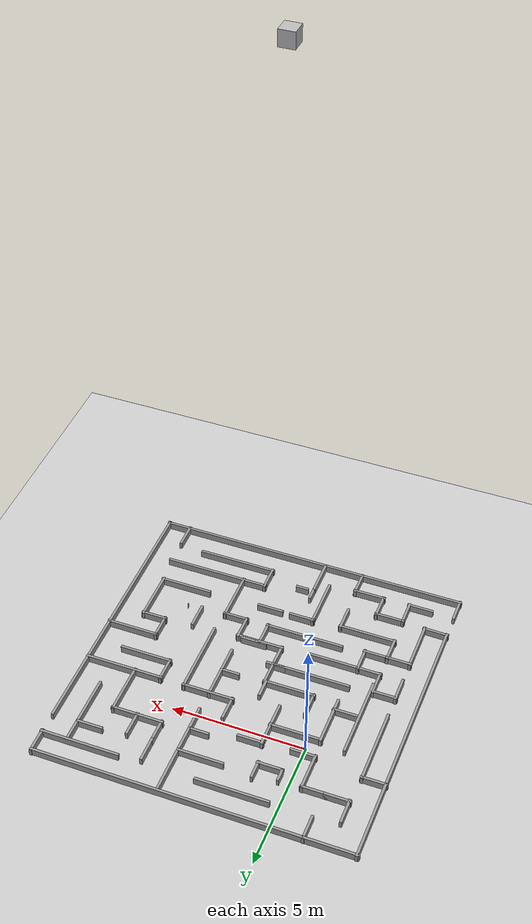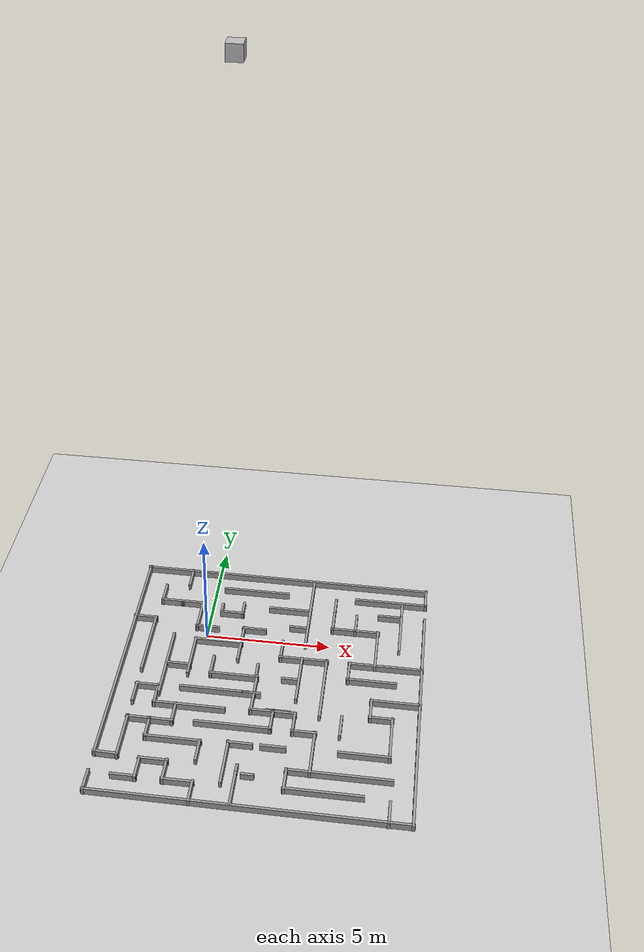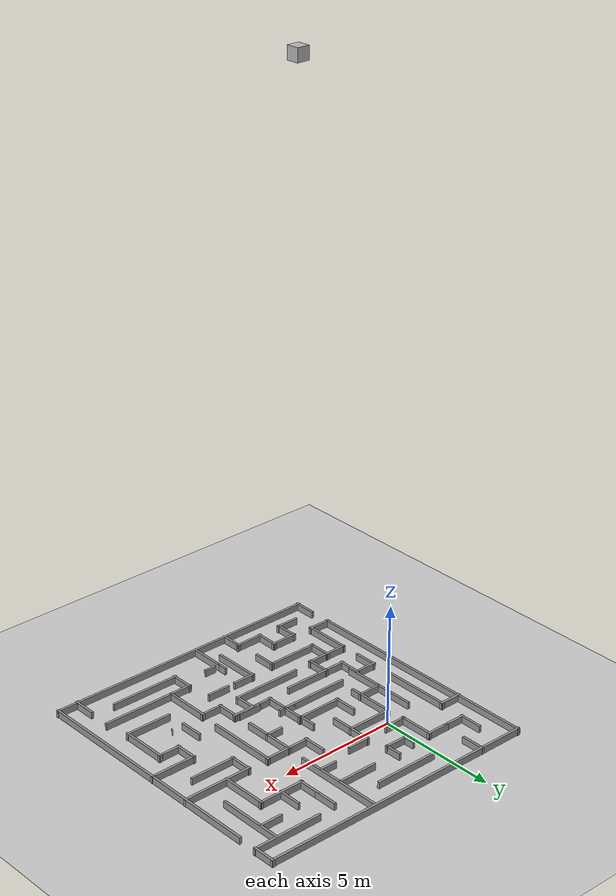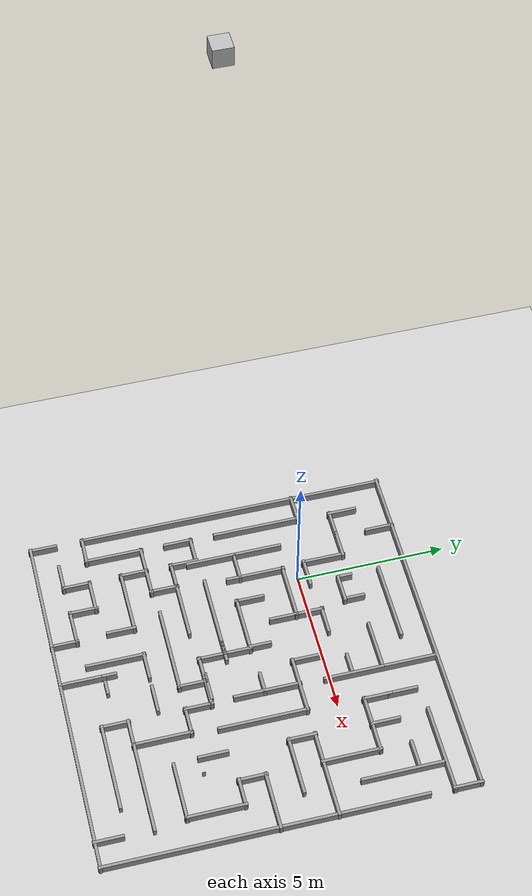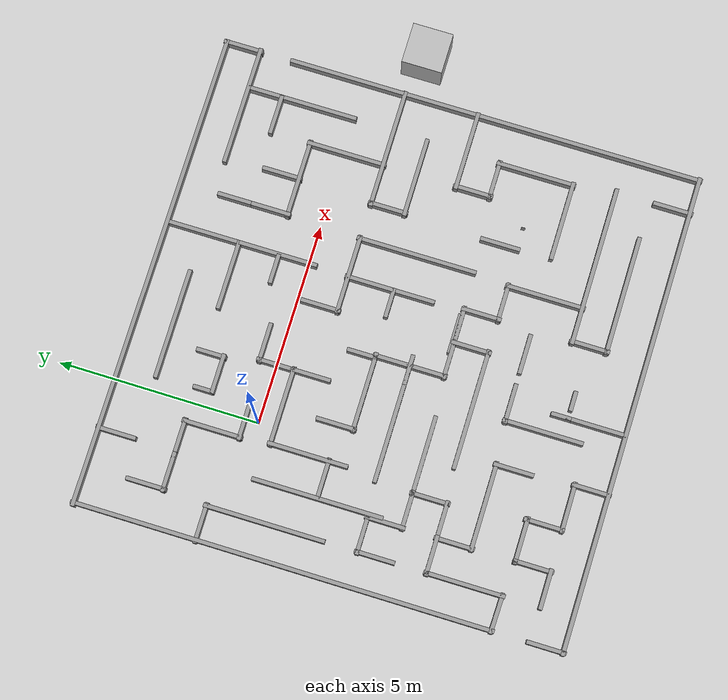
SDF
<sdf version="1.7">
 <world name="default">
  <light name="sun" type="directional">
   <pose>0 0 10 0 -0 0</pose>
   <diffuse>0.8 0.8 0.8 1</diffuse>
   <specular>0.2 0.2 0.2 1</specular>
   <attenuation>
    <range>1000</range>
    <constant>0.9</constant>
    <linear>0.1</linear>
    <quadratic>0.001</quadratic>
   </attenuation>
   <direction>-0.5 0.5 -0.9</direction>
   <spot><inner_angle>0</inner_angle><outer_angle>0</outer_angle><falloff>0</falloff></spot>
  </light>
  <model name="camera">
   <static>true</static>
   <pose>2 -2.8 25 0 1.57 0</pose>
   <link name="link">
    <visual name="visual"><geometry><box><size>0.5 0.5 0.5</size></box></geometry></visual>
    <sensor name="my_camera" type="camera">
     <camera>
      <save enabled="true"><path>/tmp/camera_save_tutorial</path></save>
      <horizontal_fov>1.047</horizontal_fov>
      <image><width>1920</width><height>1080</height></image>
      <clip><near>0.5</near><far>100</far></clip>
     </camera>
     <always_on>1</always_on>
     <update_rate>30</update_rate>
    </sensor>
   </link>
  </model>
  <model name="post">
   <pose>2 -2.8 26 0 1.57 0</pose>
   <static>true</static>
   <link name="link">
    <sensor name="logical_camera" type="logical_camera">
     <logical_camera>
      <near>0.55</near>
      <far>100</far>
      <horizontal_fov>1.05</horizontal_fov>
      <aspect_ratio>1.8</aspect_ratio>
     </logical_camera>
     <visualize>true</visualize>
     <always_on>true</always_on>
     <update_rate>10</update_rate>
    </sensor>
   </link>
  </model>
  <model name="ground_plane">
   <static>1</static>
   <link name="link">
    <collision name="collision">
     <geometry><plane><normal>0 0 1</normal><size>100 100</size></plane></geometry>
     <surface>
      <contact><collide_bitmask>65535</collide_bitmask></contact>
      <friction><ode><mu>100</mu><mu2>50</mu2></ode></friction>
     </surface>
    </collision>
    <visual name="visual">
     <cast_shadows>0</cast_shadows>
     <geometry><plane><normal>0 0 1</normal><size>100 100</size></plane></geometry>
     <material>
      <script><uri>file://media/materials/scripts/gazebo.material</uri><name>Gazebo/Grey</name></script>
     </material>
    </visual>
   </link>
  </model>
  <gravity>0 0 -9.8</gravity>
  <magnetic_field>6e-06 2.3e-05 -4.2e-05</magnetic_field>
  <atmosphere type="adiabatic"/>
  <physics type="ode">
   <max_step_size>0.001</max_step_size>
   <real_time_factor>1</real_time_factor>
   <real_time_update_rate>1000</real_time_update_rate>
  </physics>
  <scene><ambient>0.4 0.4 0.4 1</ambient><background>0.7 0.7 0.7 1</background><shadows>1</shadows></scene>
  <spherical_coordinates>
   <surface_model>EARTH_WGS84</surface_model>
   <latitude_deg>0</latitude_deg>
   <longitude_deg>0</longitude_deg>
   <elevation>0</elevation>
   <heading_deg>0</heading_deg>
  </spherical_coordinates>
  <model name="maze_2">
   <pose>2.824 -2.42312 0 0 -0 0</pose>
   <link name="Wall_0">
    <collision name="Wall_0_Collision"><geometry><box><size>12.0001 0.1 0.5</size></box></geometry></collision>
    <visual name="Wall_0_Visual">
     <geometry><box><size>12.0001 0.1 0.5</size></box></geometry>
     <material>
      <script><uri>file://media/materials/scripts/gazebo.material</uri><name>Gazebo/Grey</name></script>
      <ambient>1 1 1 1</ambient>
     </material>
     <meta><layer>0</layer></meta>
    </visual>
    <pose>-0.00995 6.00703 0 0 -0 -0.00385</pose>
   </link>
   <link name="Wall_101">
    <collision name="Wall_101_Collision"><geometry><box><size>2 0.1 0.5</size></box></geometry></collision>
    <visual name="Wall_101_Visual">
     <geometry><box><size>2 0.1 0.5</size></box></geometry>
     <material>
      <script><uri>file://media/materials/scripts/gazebo.material</uri><name>Gazebo/Grey</name></script>
      <ambient>1 1 1 1</ambient>
     </material>
     <meta><layer>0</layer></meta>
    </visual>
    <pose>-3.22514 1.07823 0 0 -0 1.5708</pose>
   </link>
   <link name="Wall_102">
    <collision name="Wall_102_Collision"><geometry><box><size>2 0.1 0.5</size></box></geometry></collision>
    <visual name="Wall_102_Visual">
     <geometry><box><size>2 0.1 0.5</size></box></geometry>
     <material>
      <script><uri>file://media/materials/scripts/gazebo.material</uri><name>Gazebo/Grey</name></script>
      <ambient>1 1 1 1</ambient>
     </material>
     <meta><layer>0</layer></meta>
    </visual>
    <pose>-2.30014 2.00323 0 0 -0 0</pose>
   </link>
   <link name="Wall_103">
    <collision name="Wall_103_Collision"><geometry><box><size>1 0.1 0.5</size></box></geometry></collision>
    <visual name="Wall_103_Visual">
     <geometry><box><size>1 0.1 0.5</size></box></geometry>
     <material>
      <script><uri>file://media/materials/scripts/gazebo.material</uri><name>Gazebo/Grey</name></script>
      <ambient>1 1 1 1</ambient>
     </material>
     <meta><layer>0</layer></meta>
    </visual>
    <pose>-1.37514 1.57823 0 0 -0 -1.5708</pose>
   </link>
   <link name="Wall_105">
    <collision name="Wall_105_Collision"><geometry><box><size>1 0.1 0.5</size></box></geometry></collision>
    <visual name="Wall_105_Visual">
     <geometry><box><size>1 0.1 0.5</size></box></geometry>
     <material>
      <script><uri>file://media/materials/scripts/gazebo.material</uri><name>Gazebo/Grey</name></script>
      <ambient>1 1 1 1</ambient>
     </material>
     <meta><layer>0</layer></meta>
    </visual>
    <pose>-1.37514 2.42823 0 0 -0 1.5708</pose>
   </link>
   <link name="Wall_106">
    <collision name="Wall_106_Collision"><geometry><box><size>1 0.1 0.5</size></box></geometry></collision>
    <visual name="Wall_106_Visual">
     <geometry><box><size>1 0.1 0.5</size></box></geometry>
     <material>
      <script><uri>file://media/materials/scripts/gazebo.material</uri><name>Gazebo/Grey</name></script>
      <ambient>1 1 1 1</ambient>
     </material>
     <meta><layer>0</layer></meta>
    </visual>
    <pose>-0.950141 2.85323 0 0 -0 0</pose>
   </link>
   <link name="Wall_109">
    <collision name="Wall_109_Collision"><geometry><box><size>0 0.1 0.5</size></box></geometry></collision>
    <visual name="Wall_109_Visual">
     <geometry><box><size>0 0.1 0.5</size></box></geometry>
     <material>
      <script><uri>file://media/materials/scripts/gazebo.material</uri><name>Gazebo/Grey</name></script>
      <ambient>1 1 1 1</ambient>
     </material>
     <meta><layer>0</layer></meta>
    </visual>
    <pose>3.55854 -2.2765 0 0 -0 3.14159</pose>
   </link>
   <link name="Wall_110">
    <collision name="Wall_110_Collision"><geometry><box><size>1 0.1 0.5</size></box></geometry></collision>
    <visual name="Wall_110_Visual">
     <geometry><box><size>1 0.1 0.5</size></box></geometry>
     <material>
      <script><uri>file://media/materials/scripts/gazebo.material</uri><name>Gazebo/Grey</name></script>
      <ambient>1 1 1 1</ambient>
     </material>
     <meta><layer>0</layer></meta>
    </visual>
    <pose>3.00854 -1.8515 0 0 -0 1.5708</pose>
   </link>
   <link name="Wall_111">
    <collision name="Wall_111_Collision"><geometry><box><size>1 0.1 0.5</size></box></geometry></collision>
    <visual name="Wall_111_Visual">
     <geometry><box><size>1 0.1 0.5</size></box></geometry>
     <material>
      <script><uri>file://media/materials/scripts/gazebo.material</uri><name>Gazebo/Grey</name></script>
      <ambient>1 1 1 1</ambient>
     </material>
     <meta><layer>0</layer></meta>
    </visual>
    <pose>0.58354 -1.4265 0 0 -0 3.14159</pose>
   </link>
   <link name="Wall_112">
    <collision name="Wall_112_Collision"><geometry><box><size>3 0.1 0.5</size></box></geometry></collision>
    <visual name="Wall_112_Visual">
     <geometry><box><size>3 0.1 0.5</size></box></geometry>
     <material>
      <script><uri>file://media/materials/scripts/gazebo.material</uri><name>Gazebo/Grey</name></script>
      <ambient>1 1 1 1</ambient>
     </material>
     <meta><layer>0</layer></meta>
    </visual>
    <pose>2.15854 -0.001499 0 0 -0 1.5708</pose>
   </link>
   <link name="Wall_113">
    <collision name="Wall_113_Collision"><geometry><box><size>2 0.1 0.5</size></box></geometry></collision>
    <visual name="Wall_113_Visual">
     <geometry><box><size>2 0.1 0.5</size></box></geometry>
     <material>
      <script><uri>file://media/materials/scripts/gazebo.material</uri><name>Gazebo/Grey</name></script>
      <ambient>1 1 1 1</ambient>
     </material>
     <meta><layer>0</layer></meta>
    </visual>
    <pose>1.23354 1.4235 0 0 -0 3.14159</pose>
   </link>
   <link name="Wall_114">
    <collision name="Wall_114_Collision"><geometry><box><size>1 0.1 0.5</size></box></geometry></collision>
    <visual name="Wall_114_Visual">
     <geometry><box><size>1 0.1 0.5</size></box></geometry>
     <material>
      <script><uri>file://media/materials/scripts/gazebo.material</uri><name>Gazebo/Grey</name></script>
      <ambient>1 1 1 1</ambient>
     </material>
     <meta><layer>0</layer></meta>
    </visual>
    <pose>0.308542 1.8485 0 0 -0 1.5708</pose>
   </link>
   <link name="Wall_117">
    <collision name="Wall_117_Collision"><geometry><box><size>2.25 0.1 0.5</size></box></geometry></collision>
    <visual name="Wall_117_Visual">
     <geometry><box><size>2.25 0.1 0.5</size></box></geometry>
     <material>
      <script><uri>file://media/materials/scripts/gazebo.material</uri><name>Gazebo/Grey</name></script>
      <ambient>1 1 1 1</ambient>
     </material>
     <meta><layer>0</layer></meta>
    </visual>
    <pose>1.17196 0.374398 0 0 -0 -1.5708</pose>
   </link>
   <link name="Wall_119">
    <collision name="Wall_119_Collision"><geometry><box><size>0.75 0.1 0.5</size></box></geometry></collision>
    <visual name="Wall_119_Visual">
     <geometry><box><size>0.75 0.1 0.5</size></box></geometry>
     <material>
      <script><uri>file://media/materials/scripts/gazebo.material</uri><name>Gazebo/Grey</name></script>
      <ambient>1 1 1 1</ambient>
     </material>
     <meta><layer>0</layer></meta>
    </visual>
    <pose>0.851848 0.277924 0 0 -0 3.14159</pose>
   </link>
   <link name="Wall_12">
    <collision name="Wall_12_Collision"><geometry><box><size>0.969582 0.1 0.5</size></box></geometry></collision>
    <visual name="Wall_12_Visual">
     <geometry><box><size>0.969582 0.1 0.5</size></box></geometry>
     <material>
      <script><uri>file://media/materials/scripts/gazebo.material</uri><name>Gazebo/Grey</name></script>
      <ambient>1 1 1 1</ambient>
     </material>
     <meta><layer>0</layer></meta>
    </visual>
    <pose>-2.07514 -5.58698 0 0 -0 1.5708</pose>
   </link>
   <link name="Wall_122">
    <collision name="Wall_122_Collision"><geometry><box><size>0.75 0.1 0.5</size></box></geometry></collision>
    <visual name="Wall_122_Visual">
     <geometry><box><size>0.75 0.1 0.5</size></box></geometry>
     <material>
      <script><uri>file://media/materials/scripts/gazebo.material</uri><name>Gazebo/Grey</name></script>
      <ambient>1 1 1 1</ambient>
     </material>
     <meta><layer>0</layer></meta>
    </visual>
    <pose>-0.575141 -0.627186 0 0 -0 0</pose>
   </link>
   <link name="Wall_124">
    <collision name="Wall_124_Collision"><geometry><box><size>0.75 0.1 0.5</size></box></geometry></collision>
    <visual name="Wall_124_Visual">
     <geometry><box><size>0.75 0.1 0.5</size></box></geometry>
     <material>
      <script><uri>file://media/materials/scripts/gazebo.material</uri><name>Gazebo/Grey</name></script>
      <ambient>1 1 1 1</ambient>
     </material>
     <meta><layer>0</layer></meta>
    </visual>
    <pose>-0.525141 0.55323 0 0 -0 -1.5708</pose>
   </link>
   <link name="Wall_126">
    <collision name="Wall_126_Collision"><geometry><box><size>3.75 0.1 0.5</size></box></geometry></collision>
    <visual name="Wall_126_Visual">
     <geometry><box><size>3.75 0.1 0.5</size></box></geometry>
     <material>
      <script><uri>file://media/materials/scripts/gazebo.material</uri><name>Gazebo/Grey</name></script>
      <ambient>1 1 1 1</ambient>
     </material>
     <meta><layer>0</layer></meta>
    </visual>
    <pose>1.21219 4.08928 0 0 -0 1.5708</pose>
   </link>
   <link name="Wall_13">
    <collision name="Wall_13_Collision"><geometry><box><size>1.25857 0.1 0.5</size></box></geometry></collision>
    <visual name="Wall_13_Visual">
     <geometry><box><size>1.25857 0.1 0.5</size></box></geometry>
     <material>
      <script><uri>file://media/materials/scripts/gazebo.material</uri><name>Gazebo/Grey</name></script>
      <ambient>1 1 1 1</ambient>
     </material>
     <meta><layer>0</layer></meta>
    </visual>
    <pose>-2.62941 -5.18044 0 0 -0 -3.13572</pose>
   </link>
   <link name="Wall_130">
    <collision name="Wall_130_Collision"><geometry><box><size>3.25 0.1 0.5</size></box></geometry></collision>
    <visual name="Wall_130_Visual">
     <geometry><box><size>3.25 0.1 0.5</size></box></geometry>
     <material>
      <script><uri>file://media/materials/scripts/gazebo.material</uri><name>Gazebo/Grey</name></script>
      <ambient>1 1 1 1</ambient>
     </material>
     <meta><layer>0</layer></meta>
    </visual>
    <pose>-4.14755 0.55409 0 0 -0 1.5708</pose>
   </link>
   <link name="Wall_131">
    <collision name="Wall_131_Collision"><geometry><box><size>1 0.1 0.5</size></box></geometry></collision>
    <visual name="Wall_131_Visual">
     <geometry><box><size>1 0.1 0.5</size></box></geometry>
     <material>
      <script><uri>file://media/materials/scripts/gazebo.material</uri><name>Gazebo/Grey</name></script>
      <ambient>1 1 1 1</ambient>
     </material>
     <meta><layer>0</layer></meta>
    </visual>
    <pose>-4.57255 4.10409 0 0 -0 3.14159</pose>
   </link>
   <link name="Wall_132">
    <collision name="Wall_132_Collision"><geometry><box><size>1 0.1 0.5</size></box></geometry></collision>
    <visual name="Wall_132_Visual">
     <geometry><box><size>1 0.1 0.5</size></box></geometry>
     <material>
      <script><uri>file://media/materials/scripts/gazebo.material</uri><name>Gazebo/Grey</name></script>
      <ambient>1 1 1 1</ambient>
     </material>
     <meta><layer>0</layer></meta>
    </visual>
    <pose>-4.99755 4.52909 0 0 -0 1.5708</pose>
   </link>
   <link name="Wall_134">
    <collision name="Wall_134_Collision"><geometry><box><size>1 0.1 0.5</size></box></geometry></collision>
    <visual name="Wall_134_Visual">
     <geometry><box><size>1 0.1 0.5</size></box></geometry>
     <material>
      <script><uri>file://media/materials/scripts/gazebo.material</uri><name>Gazebo/Grey</name></script>
      <ambient>1 1 1 1</ambient>
     </material>
     <meta><layer>0</layer></meta>
    </visual>
    <pose>-3.72255 4.10409 0 0 -0 0</pose>
   </link>
   <link name="Wall_135">
    <collision name="Wall_135_Collision"><geometry><box><size>1.5 0.1 0.5</size></box></geometry></collision>
    <visual name="Wall_135_Visual">
     <geometry><box><size>1.5 0.1 0.5</size></box></geometry>
     <material>
      <script><uri>file://media/materials/scripts/gazebo.material</uri><name>Gazebo/Grey</name></script>
      <ambient>1 1 1 1</ambient>
     </material>
     <meta><layer>0</layer></meta>
    </visual>
    <pose>-3.29755 3.42909 0 0 -0 -1.5708</pose>
   </link>
   <link name="Wall_139">
    <collision name="Wall_139_Collision"><geometry><box><size>1 0.1 0.5</size></box></geometry></collision>
    <visual name="Wall_139_Visual">
     <geometry><box><size>1 0.1 0.5</size></box></geometry>
     <material>
      <script><uri>file://media/materials/scripts/gazebo.material</uri><name>Gazebo/Grey</name></script>
      <ambient>1 1 1 1</ambient>
     </material>
     <meta><layer>0</layer></meta>
    </visual>
    <pose>-2.87255 2.75409 0 0 -0 0</pose>
   </link>
   <link name="Wall_14">
    <collision name="Wall_14_Collision"><geometry><box><size>1 0.1 0.5</size></box></geometry></collision>
    <visual name="Wall_14_Visual">
     <geometry><box><size>1 0.1 0.5</size></box></geometry>
     <material>
      <script><uri>file://media/materials/scripts/gazebo.material</uri><name>Gazebo/Grey</name></script>
      <ambient>1 1 1 1</ambient>
     </material>
     <meta><layer>0</layer></meta>
    </visual>
    <pose>-3.18369 -4.74349 0 0 -0 1.5708</pose>
   </link>
   <link name="Wall_140">
    <collision name="Wall_140_Collision"><geometry><box><size>0.5 0.1 0.5</size></box></geometry></collision>
    <visual name="Wall_140_Visual">
     <geometry><box><size>0.5 0.1 0.5</size></box></geometry>
     <material>
      <script><uri>file://media/materials/scripts/gazebo.material</uri><name>Gazebo/Grey</name></script>
      <ambient>1 1 1 1</ambient>
     </material>
     <meta><layer>0</layer></meta>
    </visual>
    <pose>-2.44755 3.92909 0 0 -0 1.5708</pose>
   </link>
   <link name="Wall_141">
    <collision name="Wall_141_Collision"><geometry><box><size>2.75 0.1 0.5</size></box></geometry></collision>
    <visual name="Wall_141_Visual">
     <geometry><box><size>2.75 0.1 0.5</size></box></geometry>
     <material>
      <script><uri>file://media/materials/scripts/gazebo.material</uri><name>Gazebo/Grey</name></script>
      <ambient>1 1 1 1</ambient>
     </material>
     <meta><layer>0</layer></meta>
    </visual>
    <pose>-1.14755 5.10409 0 0 -0 0</pose>
   </link>
   <link name="Wall_144">
    <collision name="Wall_144_Collision"><geometry><box><size>1 0.1 0.5</size></box></geometry></collision>
    <visual name="Wall_144_Visual">
     <geometry><box><size>1 0.1 0.5</size></box></geometry>
     <material>
      <script><uri>file://media/materials/scripts/gazebo.material</uri><name>Gazebo/Grey</name></script>
      <ambient>1 1 1 1</ambient>
     </material>
     <meta><layer>0</layer></meta>
    </visual>
    <pose>-1.99278 3.69931 0 0 -0 0</pose>
   </link>
   <link name="Wall_145">
    <collision name="Wall_145_Collision"><geometry><box><size>0.75 0.1 0.5</size></box></geometry></collision>
    <visual name="Wall_145_Visual">
     <geometry><box><size>0.75 0.1 0.5</size></box></geometry>
     <material>
      <script><uri>file://media/materials/scripts/gazebo.material</uri><name>Gazebo/Grey</name></script>
      <ambient>1 1 1 1</ambient>
     </material>
     <meta><layer>0</layer></meta>
    </visual>
    <pose>-1.56778 3.99931 0 0 -0 1.5708</pose>
   </link>
   <link name="Wall_149">
    <collision name="Wall_149_Collision"><geometry><box><size>1.75 0.1 0.5</size></box></geometry></collision>
    <visual name="Wall_149_Visual">
     <geometry><box><size>1.75 0.1 0.5</size></box></geometry>
     <material>
      <script><uri>file://media/materials/scripts/gazebo.material</uri><name>Gazebo/Grey</name></script>
      <ambient>1 1 1 1</ambient>
     </material>
     <meta><layer>0</layer></meta>
    </visual>
    <pose>0.382545 4.18203 0 0 -0 3.14159</pose>
   </link>
   <link name="Wall_151">
    <collision name="Wall_151_Collision"><geometry><box><size>0.75 0.1 0.5</size></box></geometry></collision>
    <visual name="Wall_151_Visual">
     <geometry><box><size>0.75 0.1 0.5</size></box></geometry>
     <material>
      <script><uri>file://media/materials/scripts/gazebo.material</uri><name>Gazebo/Grey</name></script>
      <ambient>1 1 1 1</ambient>
     </material>
     <meta><layer>0</layer></meta>
    </visual>
    <pose>0.842318 3.17636 0 0 -0 3.14159</pose>
   </link>
   <link name="Wall_153">
    <collision name="Wall_153_Collision"><geometry><box><size>1 0.1 0.5</size></box></geometry></collision>
    <visual name="Wall_153_Visual">
     <geometry><box><size>1 0.1 0.5</size></box></geometry>
     <material>
      <script><uri>file://media/materials/scripts/gazebo.material</uri><name>Gazebo/Grey</name></script>
      <ambient>1 1 1 1</ambient>
     </material>
     <meta><layer>0</layer></meta>
    </visual>
    <pose>-4.04698 5.58737 0 0 -0 -1.5708</pose>
   </link>
   <link name="Wall_155">
    <collision name="Wall_155_Collision"><geometry><box><size>1 0.1 0.5</size></box></geometry></collision>
    <visual name="Wall_155_Visual">
     <geometry><box><size>1 0.1 0.5</size></box></geometry>
     <material>
      <script><uri>file://media/materials/scripts/gazebo.material</uri><name>Gazebo/Grey</name></script>
      <ambient>1 1 1 1</ambient>
     </material>
     <meta><layer>0</layer></meta>
    </visual>
    <pose>5.93516 5.55922 0 0 -0 -1.5708</pose>
   </link>
   <link name="Wall_156">
    <collision name="Wall_156_Collision"><geometry><box><size>3 0.1 0.5</size></box></geometry></collision>
    <visual name="Wall_156_Visual">
     <geometry><box><size>3 0.1 0.5</size></box></geometry>
     <material>
      <script><uri>file://media/materials/scripts/gazebo.material</uri><name>Gazebo/Grey</name></script>
      <ambient>1 1 1 1</ambient>
     </material>
     <meta><layer>0</layer></meta>
    </visual>
    <pose>4.51016 5.13422 0 0 -0 3.14159</pose>
   </link>
   <link name="Wall_162">
    <collision name="Wall_162_Collision"><geometry><box><size>2.75 0.1 0.5</size></box></geometry></collision>
    <visual name="Wall_162_Visual">
     <geometry><box><size>2.75 0.1 0.5</size></box></geometry>
     <material>
      <script><uri>file://media/materials/scripts/gazebo.material</uri><name>Gazebo/Grey</name></script>
      <ambient>1 1 1 1</ambient>
     </material>
     <meta><layer>0</layer></meta>
    </visual>
    <pose>4.98401 3.75227 0 0 -0 1.5708</pose>
   </link>
   <link name="Wall_165">
    <collision name="Wall_165_Collision"><geometry><box><size>1 0.1 0.5</size></box></geometry></collision>
    <visual name="Wall_165_Visual">
     <geometry><box><size>1 0.1 0.5</size></box></geometry>
     <material>
      <script><uri>file://media/materials/scripts/gazebo.material</uri><name>Gazebo/Grey</name></script>
      <ambient>1 1 1 1</ambient>
     </material>
     <meta><layer>0</layer></meta>
    </visual>
    <pose>2.22486 4.54781 0 0 -0 1.5708</pose>
   </link>
   <link name="Wall_167">
    <collision name="Wall_167_Collision"><geometry><box><size>1 0.1 0.5</size></box></geometry></collision>
    <visual name="Wall_167_Visual">
     <geometry><box><size>1 0.1 0.5</size></box></geometry>
     <material>
      <script><uri>file://media/materials/scripts/gazebo.material</uri><name>Gazebo/Grey</name></script>
      <ambient>1 1 1 1</ambient>
     </material>
     <meta><layer>0</layer></meta>
    </visual>
    <pose>3.15367 3.70192 0 0 -0 1.5708</pose>
   </link>
   <link name="Wall_169">
    <collision name="Wall_169_Collision"><geometry><box><size>1 0.1 0.5</size></box></geometry></collision>
    <visual name="Wall_169_Visual">
     <geometry><box><size>1 0.1 0.5</size></box></geometry>
     <material>
      <script><uri>file://media/materials/scripts/gazebo.material</uri><name>Gazebo/Grey</name></script>
      <ambient>1 1 1 1</ambient>
     </material>
     <meta><layer>0</layer></meta>
    </visual>
    <pose>4.51878 4.2826 0 0 -0 3.14159</pose>
   </link>
   <link name="Wall_173">
    <collision name="Wall_173_Collision"><geometry><box><size>10.4614 0.1 0.5</size></box></geometry></collision>
    <visual name="Wall_173_Visual">
     <geometry><box><size>10.4614 0.1 0.5</size></box></geometry>
     <material>
      <script><uri>file://media/materials/scripts/gazebo.material</uri><name>Gazebo/Grey</name></script>
      <ambient>1 1 1 1</ambient>
     </material>
     <meta><layer>0</layer></meta>
    </visual>
    <pose>5.93001 -0.871484 0 0 -0 -1.5718</pose>
   </link>
   <link name="Wall_176">
    <collision name="Wall_176_Collision"><geometry><box><size>0.5 0.1 0.5</size></box></geometry></collision>
    <visual name="Wall_176_Visual">
     <geometry><box><size>0.5 0.1 0.5</size></box></geometry>
     <material>
      <script><uri>file://media/materials/scripts/gazebo.material</uri><name>Gazebo/Grey</name></script>
      <ambient>1 1 1 1</ambient>
     </material>
     <meta><layer>0</layer></meta>
    </visual>
    <pose>-0.590734 -4.41486 0 0 -0 1.5708</pose>
   </link>
   <link name="Wall_178">
    <collision name="Wall_178_Collision"><geometry><box><size>1.5 0.1 0.5</size></box></geometry></collision>
    <visual name="Wall_178_Visual">
     <geometry><box><size>1.5 0.1 0.5</size></box></geometry>
     <material>
      <script><uri>file://media/materials/scripts/gazebo.material</uri><name>Gazebo/Grey</name></script>
      <ambient>1 1 1 1</ambient>
     </material>
     <meta><layer>0</layer></meta>
    </visual>
    <pose>-0.590734 -5.26486 0 0 -0 -1.5708</pose>
   </link>
   <link name="Wall_180">
    <collision name="Wall_180_Collision"><geometry><box><size>1 0.1 0.5</size></box></geometry></collision>
    <visual name="Wall_180_Visual">
     <geometry><box><size>1 0.1 0.5</size></box></geometry>
     <material>
      <script><uri>file://media/materials/scripts/gazebo.material</uri><name>Gazebo/Grey</name></script>
      <ambient>1 1 1 1</ambient>
     </material>
     <meta><layer>0</layer></meta>
    </visual>
    <pose>5.06727 -5.60513 0 0 -0 1.5708</pose>
   </link>
   <link name="Wall_182">
    <collision name="Wall_182_Collision"><geometry><box><size>1 0.1 0.5</size></box></geometry></collision>
    <visual name="Wall_182_Visual">
     <geometry><box><size>1 0.1 0.5</size></box></geometry>
     <material>
      <script><uri>file://media/materials/scripts/gazebo.material</uri><name>Gazebo/Grey</name></script>
      <ambient>1 1 1 1</ambient>
     </material>
     <meta><layer>0</layer></meta>
    </visual>
    <pose>-3.65014 0.553232 0 0 -0 3.14159</pose>
   </link>
   <link name="Wall_2">
    <collision name="Wall_2_Collision"><geometry><box><size>12 0.1 0.5</size></box></geometry></collision>
    <visual name="Wall_2_Visual">
     <geometry><box><size>12 0.1 0.5</size></box></geometry>
     <material>
      <script><uri>file://media/materials/scripts/gazebo.material</uri><name>Gazebo/Grey</name></script>
      <ambient>1 1 1 1</ambient>
     </material>
     <meta><layer>0</layer></meta>
    </visual>
    <pose>-0.000141 -6.01198 0 0 -0 3.13903</pose>
   </link>
   <link name="Wall_21">
    <collision name="Wall_21_Collision"><geometry><box><size>1.1673 0.1 0.5</size></box></geometry></collision>
    <visual name="Wall_21_Visual">
     <geometry><box><size>1.1673 0.1 0.5</size></box></geometry>
     <material>
      <script><uri>file://media/materials/scripts/gazebo.material</uri><name>Gazebo/Grey</name></script>
      <ambient>1 1 1 1</ambient>
     </material>
     <meta><layer>0</layer></meta>
    </visual>
    <pose>-3.69234 -4.3337 0 0 -0 3.14159</pose>
   </link>
   <link name="Wall_22">
    <collision name="Wall_22_Collision"><geometry><box><size>1 0.1 0.5</size></box></geometry></collision>
    <visual name="Wall_22_Visual">
     <geometry><box><size>1 0.1 0.5</size></box></geometry>
     <material>
      <script><uri>file://media/materials/scripts/gazebo.material</uri><name>Gazebo/Grey</name></script>
      <ambient>1 1 1 1</ambient>
     </material>
     <meta><layer>0</layer></meta>
    </visual>
    <pose>-4.20099 -4.77391 0 0 -0 -1.5708</pose>
   </link>
   <link name="Wall_25">
    <collision name="Wall_25_Collision"><geometry><box><size>1.00022 0.1 0.5</size></box></geometry></collision>
    <visual name="Wall_25_Visual">
     <geometry><box><size>1.00022 0.1 0.5</size></box></geometry>
     <material>
      <script><uri>file://media/materials/scripts/gazebo.material</uri><name>Gazebo/Grey</name></script>
      <ambient>1 1 1 1</ambient>
     </material>
     <meta><layer>0</layer></meta>
    </visual>
    <pose>-5.50014 -4.25639 0 0 -0 -0.022628</pose>
   </link>
   <link name="Wall_26">
    <collision name="Wall_26_Collision"><geometry><box><size>2 0.1 0.5</size></box></geometry></collision>
    <visual name="Wall_26_Visual">
     <geometry><box><size>2 0.1 0.5</size></box></geometry>
     <material>
      <script><uri>file://media/materials/scripts/gazebo.material</uri><name>Gazebo/Grey</name></script>
      <ambient>1 1 1 1</ambient>
     </material>
     <meta><layer>0</layer></meta>
    </visual>
    <pose>-5.07514 -3.34101 0 0 -0 1.5708</pose>
   </link>
   <link name="Wall_27">
    <collision name="Wall_27_Collision"><geometry><box><size>1 0.1 0.5</size></box></geometry></collision>
    <visual name="Wall_27_Visual">
     <geometry><box><size>1 0.1 0.5</size></box></geometry>
     <material>
      <script><uri>file://media/materials/scripts/gazebo.material</uri><name>Gazebo/Grey</name></script>
      <ambient>1 1 1 1</ambient>
     </material>
     <meta><layer>0</layer></meta>
    </visual>
    <pose>-4.65014 -2.41601 0 0 -0 0</pose>
   </link>
   <link name="Wall_28">
    <collision name="Wall_28_Collision"><geometry><box><size>1 0.1 0.5</size></box></geometry></collision>
    <visual name="Wall_28_Visual">
     <geometry><box><size>1 0.1 0.5</size></box></geometry>
     <material>
      <script><uri>file://media/materials/scripts/gazebo.material</uri><name>Gazebo/Grey</name></script>
      <ambient>1 1 1 1</ambient>
     </material>
     <meta><layer>0</layer></meta>
    </visual>
    <pose>-4.22514 -2.84101 0 0 -0 -1.5708</pose>
   </link>
   <link name="Wall_29">
    <collision name="Wall_29_Collision"><geometry><box><size>2.23143 0.1 0.5</size></box></geometry></collision>
    <visual name="Wall_29_Visual">
     <geometry><box><size>2.23143 0.1 0.5</size></box></geometry>
     <material>
      <script><uri>file://media/materials/scripts/gazebo.material</uri><name>Gazebo/Grey</name></script>
      <ambient>1 1 1 1</ambient>
     </material>
     <meta><layer>0</layer></meta>
    </visual>
    <pose>-3.18449 -3.266 0 0 -0 0</pose>
   </link>
   <link name="Wall_30">
    <collision name="Wall_30_Collision"><geometry><box><size>1 0.1 0.5</size></box></geometry></collision>
    <visual name="Wall_30_Visual">
     <geometry><box><size>1 0.1 0.5</size></box></geometry>
     <material>
      <script><uri>file://media/materials/scripts/gazebo.material</uri><name>Gazebo/Grey</name></script>
      <ambient>1 1 1 1</ambient>
     </material>
     <meta><layer>0</layer></meta>
    </visual>
    <pose>-2.14384 -3.69101 0 0 -0 -1.5708</pose>
   </link>
   <link name="Wall_33">
    <collision name="Wall_33_Collision"><geometry><box><size>1 0.1 0.5</size></box></geometry></collision>
    <visual name="Wall_33_Visual">
     <geometry><box><size>1 0.1 0.5</size></box></geometry>
     <material>
      <script><uri>file://media/materials/scripts/gazebo.material</uri><name>Gazebo/Grey</name></script>
      <ambient>1 1 1 1</ambient>
     </material>
     <meta><layer>0</layer></meta>
    </visual>
    <pose>-4.62599 -5.19891 0 0 -0 3.14159</pose>
   </link>
   <link name="Wall_37">
    <collision name="Wall_37_Collision"><geometry><box><size>1 0.1 0.5</size></box></geometry></collision>
    <visual name="Wall_37_Visual">
     <geometry><box><size>1 0.1 0.5</size></box></geometry>
     <material>
      <script><uri>file://media/materials/scripts/gazebo.material</uri><name>Gazebo/Grey</name></script>
      <ambient>1 1 1 1</ambient>
     </material>
     <meta><layer>0</layer></meta>
    </visual>
    <pose>-0.650141 -3.17719 0 0 -0 3.14159</pose>
   </link>
   <link name="Wall_38">
    <collision name="Wall_38_Collision"><geometry><box><size>2 0.1 0.5</size></box></geometry></collision>
    <visual name="Wall_38_Visual">
     <geometry><box><size>2 0.1 0.5</size></box></geometry>
     <material>
      <script><uri>file://media/materials/scripts/gazebo.material</uri><name>Gazebo/Grey</name></script>
      <ambient>1 1 1 1</ambient>
     </material>
     <meta><layer>0</layer></meta>
    </visual>
    <pose>-1.07514 -4.10219 0 0 -0 -1.5708</pose>
   </link>
   <link name="Wall_40">
    <collision name="Wall_40_Collision"><geometry><box><size>1 0.1 0.5</size></box></geometry></collision>
    <visual name="Wall_40_Visual">
     <geometry><box><size>1 0.1 0.5</size></box></geometry>
     <material>
      <script><uri>file://media/materials/scripts/gazebo.material</uri><name>Gazebo/Grey</name></script>
      <ambient>1 1 1 1</ambient>
     </material>
     <meta><layer>0</layer></meta>
    </visual>
    <pose>-3.80014 -2.41601 0 0 -0 0</pose>
   </link>
   <link name="Wall_41">
    <collision name="Wall_41_Collision"><geometry><box><size>1 0.1 0.5</size></box></geometry></collision>
    <visual name="Wall_41_Visual">
     <geometry><box><size>1 0.1 0.5</size></box></geometry>
     <material>
      <script><uri>file://media/materials/scripts/gazebo.material</uri><name>Gazebo/Grey</name></script>
      <ambient>1 1 1 1</ambient>
     </material>
     <meta><layer>0</layer></meta>
    </visual>
    <pose>-3.37514 -1.991 0 0 -0 1.5708</pose>
   </link>
   <link name="Wall_42">
    <collision name="Wall_42_Collision"><geometry><box><size>2 0.1 0.5</size></box></geometry></collision>
    <visual name="Wall_42_Visual">
     <geometry><box><size>2 0.1 0.5</size></box></geometry>
     <material>
      <script><uri>file://media/materials/scripts/gazebo.material</uri><name>Gazebo/Grey</name></script>
      <ambient>1 1 1 1</ambient>
     </material>
     <meta><layer>0</layer></meta>
    </visual>
    <pose>-2.45014 -1.56601 0 0 -0 0</pose>
   </link>
   <link name="Wall_44">
    <collision name="Wall_44_Collision"><geometry><box><size>1 0.1 0.5</size></box></geometry></collision>
    <visual name="Wall_44_Visual">
     <geometry><box><size>1 0.1 0.5</size></box></geometry>
     <material>
      <script><uri>file://media/materials/scripts/gazebo.material</uri><name>Gazebo/Grey</name></script>
      <ambient>1 1 1 1</ambient>
     </material>
     <meta><layer>0</layer></meta>
    </visual>
    <pose>-3.80014 -1.56601 0 0 -0 3.14159</pose>
   </link>
   <link name="Wall_45">
    <collision name="Wall_45_Collision"><geometry><box><size>1 0.1 0.5</size></box></geometry></collision>
    <visual name="Wall_45_Visual">
     <geometry><box><size>1 0.1 0.5</size></box></geometry>
     <material>
      <script><uri>file://media/materials/scripts/gazebo.material</uri><name>Gazebo/Grey</name></script>
      <ambient>1 1 1 1</ambient>
     </material>
     <meta><layer>0</layer></meta>
    </visual>
    <pose>-4.22514 -1.14101 0 0 -0 1.5708</pose>
   </link>
   <link name="Wall_46">
    <collision name="Wall_46_Collision"><geometry><box><size>1 0.1 0.5</size></box></geometry></collision>
    <visual name="Wall_46_Visual">
     <geometry><box><size>1 0.1 0.5</size></box></geometry>
     <material>
      <script><uri>file://media/materials/scripts/gazebo.material</uri><name>Gazebo/Grey</name></script>
      <ambient>1 1 1 1</ambient>
     </material>
     <meta><layer>0</layer></meta>
    </visual>
    <pose>-4.65014 -0.716005 0 0 -0 3.14159</pose>
   </link>
   <link name="Wall_47">
    <collision name="Wall_47_Collision"><geometry><box><size>1 0.1 0.5</size></box></geometry></collision>
    <visual name="Wall_47_Visual">
     <geometry><box><size>1 0.1 0.5</size></box></geometry>
     <material>
      <script><uri>file://media/materials/scripts/gazebo.material</uri><name>Gazebo/Grey</name></script>
      <ambient>1 1 1 1</ambient>
     </material>
     <meta><layer>0</layer></meta>
    </visual>
    <pose>-5.07514 -1.14101 0 0 -0 -1.5708</pose>
   </link>
   <link name="Wall_5">
    <collision name="Wall_5_Collision"><geometry><box><size>0.969582 0.1 0.5</size></box></geometry></collision>
    <visual name="Wall_5_Visual">
     <geometry><box><size>0.969582 0.1 0.5</size></box></geometry>
     <material>
      <script><uri>file://media/materials/scripts/gazebo.material</uri><name>Gazebo/Grey</name></script>
      <ambient>1 1 1 1</ambient>
     </material>
     <meta><layer>0</layer></meta>
    </visual>
    <pose>-5.92514 -5.58698 0 0 -0 1.5708</pose>
   </link>
   <link name="Wall_51">
    <collision name="Wall_51_Collision"><geometry><box><size>4 0.1 0.5</size></box></geometry></collision>
    <visual name="Wall_51_Visual">
     <geometry><box><size>4 0.1 0.5</size></box></geometry>
     <material>
      <script><uri>file://media/materials/scripts/gazebo.material</uri><name>Gazebo/Grey</name></script>
      <ambient>1 1 1 1</ambient>
     </material>
     <meta><layer>0</layer></meta>
    </visual>
    <pose>3.14986 -4.17719 0 0 -0 3.14159</pose>
   </link>
   <link name="Wall_52">
    <collision name="Wall_52_Collision"><geometry><box><size>1 0.1 0.5</size></box></geometry></collision>
    <visual name="Wall_52_Visual">
     <geometry><box><size>1 0.1 0.5</size></box></geometry>
     <material>
      <script><uri>file://media/materials/scripts/gazebo.material</uri><name>Gazebo/Grey</name></script>
      <ambient>1 1 1 1</ambient>
     </material>
     <meta><layer>0</layer></meta>
    </visual>
    <pose>1.22486 -4.60219 0 0 -0 -1.5708</pose>
   </link>
   <link name="Wall_53">
    <collision name="Wall_53_Collision"><geometry><box><size>3 0.1 0.5</size></box></geometry></collision>
    <visual name="Wall_53_Visual">
     <geometry><box><size>3 0.1 0.5</size></box></geometry>
     <material>
      <script><uri>file://media/materials/scripts/gazebo.material</uri><name>Gazebo/Grey</name></script>
      <ambient>1 1 1 1</ambient>
     </material>
     <meta><layer>0</layer></meta>
    </visual>
    <pose>2.64986 -5.02719 0 0 -0 0</pose>
   </link>
   <link name="Wall_55">
    <collision name="Wall_55_Collision"><geometry><box><size>1 0.1 0.5</size></box></geometry></collision>
    <visual name="Wall_55_Visual">
     <geometry><box><size>1 0.1 0.5</size></box></geometry>
     <material>
      <script><uri>file://media/materials/scripts/gazebo.material</uri><name>Gazebo/Grey</name></script>
      <ambient>1 1 1 1</ambient>
     </material>
     <meta><layer>0</layer></meta>
    </visual>
    <pose>0.599859 -3.17719 0 0 -0 0</pose>
   </link>
   <link name="Wall_57">
    <collision name="Wall_57_Collision"><geometry><box><size>0.5 0.1 0.5</size></box></geometry></collision>
    <visual name="Wall_57_Visual">
     <geometry><box><size>0.5 0.1 0.5</size></box></geometry>
     <material>
      <script><uri>file://media/materials/scripts/gazebo.material</uri><name>Gazebo/Grey</name></script>
      <ambient>1 1 1 1</ambient>
     </material>
     <meta><layer>0</layer></meta>
    </visual>
    <pose>-0.15734 -4.58986 0 0 -0 0</pose>
   </link>
   <link name="Wall_60">
    <collision name="Wall_60_Collision"><geometry><box><size>2 0.1 0.5</size></box></geometry></collision>
    <visual name="Wall_60_Visual">
     <geometry><box><size>2 0.1 0.5</size></box></geometry>
     <material>
      <script><uri>file://media/materials/scripts/gazebo.material</uri><name>Gazebo/Grey</name></script>
      <ambient>1 1 1 1</ambient>
     </material>
     <meta><layer>0</layer></meta>
    </visual>
    <pose>2.07486 -3.25219 0 0 -0 1.5708</pose>
   </link>
   <link name="Wall_61">
    <collision name="Wall_61_Collision"><geometry><box><size>1 0.1 0.5</size></box></geometry></collision>
    <visual name="Wall_61_Visual">
     <geometry><box><size>1 0.1 0.5</size></box></geometry>
     <material>
      <script><uri>file://media/materials/scripts/gazebo.material</uri><name>Gazebo/Grey</name></script>
      <ambient>1 1 1 1</ambient>
     </material>
     <meta><layer>0</layer></meta>
    </visual>
    <pose>1.64986 -2.32719 0 0 -0 3.14159</pose>
   </link>
   <link name="Wall_62">
    <collision name="Wall_62_Collision"><geometry><box><size>1 0.1 0.5</size></box></geometry></collision>
    <visual name="Wall_62_Visual">
     <geometry><box><size>1 0.1 0.5</size></box></geometry>
     <material>
      <script><uri>file://media/materials/scripts/gazebo.material</uri><name>Gazebo/Grey</name></script>
      <ambient>1 1 1 1</ambient>
     </material>
     <meta><layer>0</layer></meta>
    </visual>
    <pose>1.22486 -1.90219 0 0 -0 1.5708</pose>
   </link>
   <link name="Wall_63">
    <collision name="Wall_63_Collision"><geometry><box><size>1 0.1 0.5</size></box></geometry></collision>
    <visual name="Wall_63_Visual">
     <geometry><box><size>1 0.1 0.5</size></box></geometry>
     <material>
      <script><uri>file://media/materials/scripts/gazebo.material</uri><name>Gazebo/Grey</name></script>
      <ambient>1 1 1 1</ambient>
     </material>
     <meta><layer>0</layer></meta>
    </visual>
    <pose>0.799859 -1.47719 0 0 -0 3.14159</pose>
   </link>
   <link name="Wall_64">
    <collision name="Wall_64_Collision"><geometry><box><size>1 0.1 0.5</size></box></geometry></collision>
    <visual name="Wall_64_Visual">
     <geometry><box><size>1 0.1 0.5</size></box></geometry>
     <material>
      <script><uri>file://media/materials/scripts/gazebo.material</uri><name>Gazebo/Grey</name></script>
      <ambient>1 1 1 1</ambient>
     </material>
     <meta><layer>0</layer></meta>
    </visual>
    <pose>0.374859 -1.90219 0 0 -0 -1.5708</pose>
   </link>
   <link name="Wall_65">
    <collision name="Wall_65_Collision"><geometry><box><size>3 0.1 0.5</size></box></geometry></collision>
    <visual name="Wall_65_Visual">
     <geometry><box><size>3 0.1 0.5</size></box></geometry>
     <material>
      <script><uri>file://media/materials/scripts/gazebo.material</uri><name>Gazebo/Grey</name></script>
      <ambient>1 1 1 1</ambient>
     </material>
     <meta><layer>0</layer></meta>
    </visual>
    <pose>-1.05014 -2.32719 0 0 -0 3.14159</pose>
   </link>
   <link name="Wall_67">
    <collision name="Wall_67_Collision"><geometry><box><size>1 0.1 0.5</size></box></geometry></collision>
    <visual name="Wall_67_Visual">
     <geometry><box><size>1 0.1 0.5</size></box></geometry>
     <material>
      <script><uri>file://media/materials/scripts/gazebo.material</uri><name>Gazebo/Grey</name></script>
      <ambient>1 1 1 1</ambient>
     </material>
     <meta><layer>0</layer></meta>
    </visual>
    <pose>-0.050141 -1.47719 0 0 -0 3.14159</pose>
   </link>
   <link name="Wall_68">
    <collision name="Wall_68_Collision"><geometry><box><size>1 0.1 0.5</size></box></geometry></collision>
    <visual name="Wall_68_Visual">
     <geometry><box><size>1 0.1 0.5</size></box></geometry>
     <material>
      <script><uri>file://media/materials/scripts/gazebo.material</uri><name>Gazebo/Grey</name></script>
      <ambient>1 1 1 1</ambient>
     </material>
     <meta><layer>0</layer></meta>
    </visual>
    <pose>-0.475141 -1.05219 0 0 -0 1.5708</pose>
   </link>
   <link name="Wall_69">
    <collision name="Wall_69_Collision"><geometry><box><size>3 0.1 0.5</size></box></geometry></collision>
    <visual name="Wall_69_Visual">
     <geometry><box><size>3 0.1 0.5</size></box></geometry>
     <material>
      <script><uri>file://media/materials/scripts/gazebo.material</uri><name>Gazebo/Grey</name></script>
      <ambient>1 1 1 1</ambient>
     </material>
     <meta><layer>0</layer></meta>
    </visual>
    <pose>-1.90014 -0.627186 0 0 -0 3.14159</pose>
   </link>
   <link name="Wall_71">
    <collision name="Wall_71_Collision"><geometry><box><size>1 0.1 0.5</size></box></geometry></collision>
    <visual name="Wall_71_Visual">
     <geometry><box><size>1 0.1 0.5</size></box></geometry>
     <material>
      <script><uri>file://media/materials/scripts/gazebo.material</uri><name>Gazebo/Grey</name></script>
      <ambient>1 1 1 1</ambient>
     </material>
     <meta><layer>0</layer></meta>
    </visual>
    <pose>-0.475141 -0.202186 0 0 -0 1.5708</pose>
   </link>
   <link name="Wall_72">
    <collision name="Wall_72_Collision"><geometry><box><size>2 0.1 0.5</size></box></geometry></collision>
    <visual name="Wall_72_Visual">
     <geometry><box><size>2 0.1 0.5</size></box></geometry>
     <material>
      <script><uri>file://media/materials/scripts/gazebo.material</uri><name>Gazebo/Grey</name></script>
      <ambient>1 1 1 1</ambient>
     </material>
     <meta><layer>0</layer></meta>
    </visual>
    <pose>-1.40014 0.222814 0 0 -0 3.14159</pose>
   </link>
   <link name="Wall_76">
    <collision name="Wall_76_Collision"><geometry><box><size>2 0.1 0.5</size></box></geometry></collision>
    <visual name="Wall_76_Visual">
     <geometry><box><size>2 0.1 0.5</size></box></geometry>
     <material>
      <script><uri>file://media/materials/scripts/gazebo.material</uri><name>Gazebo/Grey</name></script>
      <ambient>1 1 1 1</ambient>
     </material>
     <meta><layer>0</layer></meta>
    </visual>
    <pose>4.99986 -0.427186 0 0 -0 -3.14159</pose>
   </link>
   <link name="Wall_77">
    <collision name="Wall_77_Collision"><geometry><box><size>1 0.1 0.5</size></box></geometry></collision>
    <visual name="Wall_77_Visual">
     <geometry><box><size>1 0.1 0.5</size></box></geometry>
     <material>
      <script><uri>file://media/materials/scripts/gazebo.material</uri><name>Gazebo/Grey</name></script>
      <ambient>1 1 1 1</ambient>
     </material>
     <meta><layer>0</layer></meta>
    </visual>
    <pose>4.07486 -0.852186 0 0 -0 -1.5708</pose>
   </link>
   <link name="Wall_78">
    <collision name="Wall_78_Collision"><geometry><box><size>1 0.1 0.5</size></box></geometry></collision>
    <visual name="Wall_78_Visual">
     <geometry><box><size>1 0.1 0.5</size></box></geometry>
     <material>
      <script><uri>file://media/materials/scripts/gazebo.material</uri><name>Gazebo/Grey</name></script>
      <ambient>1 1 1 1</ambient>
     </material>
     <meta><layer>0</layer></meta>
    </visual>
    <pose>4.49986 -1.27719 0 0 -0 0</pose>
   </link>
   <link name="Wall_79">
    <collision name="Wall_79_Collision"><geometry><box><size>2 0.1 0.5</size></box></geometry></collision>
    <visual name="Wall_79_Visual">
     <geometry><box><size>2 0.1 0.5</size></box></geometry>
     <material>
      <script><uri>file://media/materials/scripts/gazebo.material</uri><name>Gazebo/Grey</name></script>
      <ambient>1 1 1 1</ambient>
     </material>
     <meta><layer>0</layer></meta>
    </visual>
    <pose>4.92486 -2.20219 0 0 -0 -1.5708</pose>
   </link>
   <link name="Wall_80">
    <collision name="Wall_80_Collision"><geometry><box><size>2 0.1 0.5</size></box></geometry></collision>
    <visual name="Wall_80_Visual">
     <geometry><box><size>2 0.1 0.5</size></box></geometry>
     <material>
      <script><uri>file://media/materials/scripts/gazebo.material</uri><name>Gazebo/Grey</name></script>
      <ambient>1 1 1 1</ambient>
     </material>
     <meta><layer>0</layer></meta>
    </visual>
    <pose>3.99986 -3.12719 0 0 -0 3.14159</pose>
   </link>
   <link name="Wall_83">
    <collision name="Wall_83_Collision"><geometry><box><size>3 0.1 0.5</size></box></geometry></collision>
    <visual name="Wall_83_Visual">
     <geometry><box><size>3 0.1 0.5</size></box></geometry>
     <material>
      <script><uri>file://media/materials/scripts/gazebo.material</uri><name>Gazebo/Grey</name></script>
      <ambient>1 1 1 1</ambient>
     </material>
     <meta><layer>0</layer></meta>
    </visual>
    <pose>4.49986 1.42281 0 0 -0 3.14159</pose>
   </link>
   <link name="Wall_84">
    <collision name="Wall_84_Collision"><geometry><box><size>1 0.1 0.5</size></box></geometry></collision>
    <visual name="Wall_84_Visual">
     <geometry><box><size>1 0.1 0.5</size></box></geometry>
     <material>
      <script><uri>file://media/materials/scripts/gazebo.material</uri><name>Gazebo/Grey</name></script>
      <ambient>1 1 1 1</ambient>
     </material>
     <meta><layer>0</layer></meta>
    </visual>
    <pose>3.07486 0.997814 0 0 -0 -1.5708</pose>
   </link>
   <link name="Wall_85">
    <collision name="Wall_85_Collision"><geometry><box><size>2 0.1 0.5</size></box></geometry></collision>
    <visual name="Wall_85_Visual">
     <geometry><box><size>2 0.1 0.5</size></box></geometry>
     <material>
      <script><uri>file://media/materials/scripts/gazebo.material</uri><name>Gazebo/Grey</name></script>
      <ambient>1 1 1 1</ambient>
     </material>
     <meta><layer>0</layer></meta>
    </visual>
    <pose>3.99986 0.572814 0 0 -0 0</pose>
   </link>
   <link name="Wall_88">
    <collision name="Wall_88_Collision"><geometry><box><size>2 0.1 0.5</size></box></geometry></collision>
    <visual name="Wall_88_Visual">
     <geometry><box><size>2 0.1 0.5</size></box></geometry>
     <material>
      <script><uri>file://media/materials/scripts/gazebo.material</uri><name>Gazebo/Grey</name></script>
      <ambient>1 1 1 1</ambient>
     </material>
     <meta><layer>0</layer></meta>
    </visual>
    <pose>4.07486 2.34781 0 0 -0 1.5708</pose>
   </link>
   <link name="Wall_89">
    <collision name="Wall_89_Collision"><geometry><box><size>2 0.1 0.5</size></box></geometry></collision>
    <visual name="Wall_89_Visual">
     <geometry><box><size>2 0.1 0.5</size></box></geometry>
     <material>
      <script><uri>file://media/materials/scripts/gazebo.material</uri><name>Gazebo/Grey</name></script>
      <ambient>1 1 1 1</ambient>
     </material>
     <meta><layer>0</layer></meta>
    </visual>
    <pose>3.14986 3.27281 0 0 -0 3.14159</pose>
   </link>
   <link name="Wall_9">
    <collision name="Wall_9_Collision"><geometry><box><size>10.4266 0.1 0.5</size></box></geometry></collision>
    <visual name="Wall_9_Visual">
     <geometry><box><size>10.4266 0.1 0.5</size></box></geometry>
     <material>
      <script><uri>file://media/materials/scripts/gazebo.material</uri><name>Gazebo/Grey</name></script>
      <ambient>1 1 1 1</ambient>
     </material>
     <meta><layer>0</layer></meta>
    </visual>
    <pose>-5.91999 0.891537 0 0 -0 1.56979</pose>
   </link>
   <link name="Wall_90">
    <collision name="Wall_90_Collision"><geometry><box><size>1 0.1 0.5</size></box></geometry></collision>
    <visual name="Wall_90_Visual">
     <geometry><box><size>1 0.1 0.5</size></box></geometry>
     <material>
      <script><uri>file://media/materials/scripts/gazebo.material</uri><name>Gazebo/Grey</name></script>
      <ambient>1 1 1 1</ambient>
     </material>
     <meta><layer>0</layer></meta>
    </visual>
    <pose>2.22486 3.69781 0 0 -0 1.5708</pose>
   </link>
   <link name="Wall_94">
    <collision name="Wall_94_Collision"><geometry><box><size>1 0.1 0.5</size></box></geometry></collision>
    <visual name="Wall_94_Visual">
     <geometry><box><size>1 0.1 0.5</size></box></geometry>
     <material>
      <script><uri>file://media/materials/scripts/gazebo.material</uri><name>Gazebo/Grey</name></script>
      <ambient>1 1 1 1</ambient>
     </material>
     <meta><layer>0</layer></meta>
    </visual>
    <pose>-5.50014 3.00323 0 0 -0 0</pose>
   </link>
   <link name="Wall_97">
    <collision name="Wall_97_Collision"><geometry><box><size>1 0.1 0.5</size></box></geometry></collision>
    <visual name="Wall_97_Visual">
     <geometry><box><size>1 0.1 0.5</size></box></geometry>
     <material>
      <script><uri>file://media/materials/scripts/gazebo.material</uri><name>Gazebo/Grey</name></script>
      <ambient>1 1 1 1</ambient>
     </material>
     <meta><layer>0</layer></meta>
    </visual>
    <pose>-2.32514 0.647814 0 0 -0 1.5708</pose>
   </link>
   <link name="Wall_99">
    <collision name="Wall_99_Collision"><geometry><box><size>3 0.1 0.5</size></box></geometry></collision>
    <visual name="Wall_99_Visual">
     <geometry><box><size>3 0.1 0.5</size></box></geometry>
     <material>
      <script><uri>file://media/materials/scripts/gazebo.material</uri><name>Gazebo/Grey</name></script>
      <ambient>1 1 1 1</ambient>
     </material>
     <meta><layer>0</layer></meta>
    </visual>
    <pose>-5.07514 1.57823 0 0 -0 -1.5708</pose>
   </link>
   <static>1</static>
  </model>
 </world>
</sdf>
